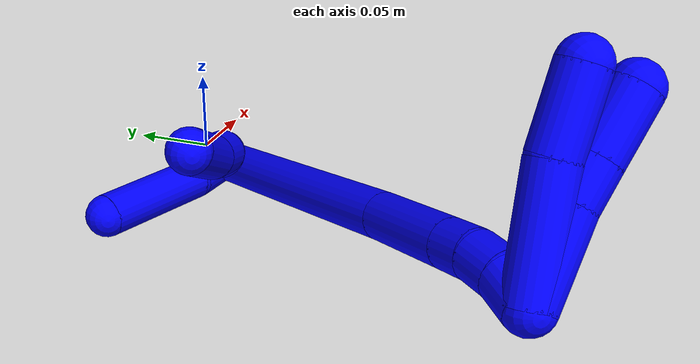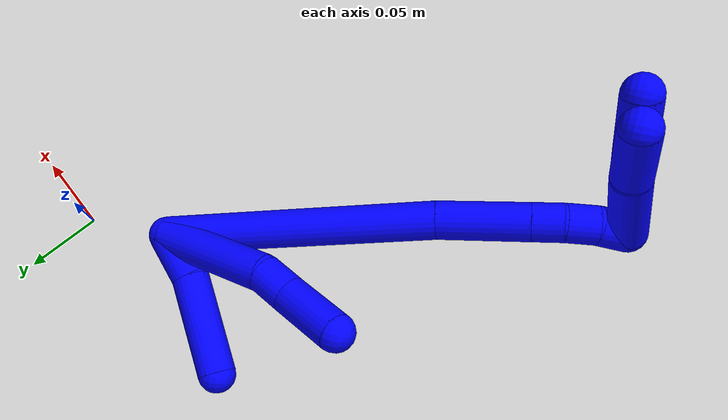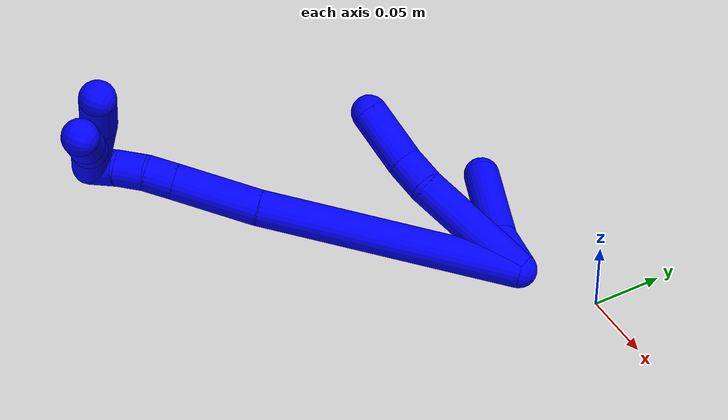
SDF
<sdf version="1.7">
 <world name="default">
  <model name="photoneo_s_sensor">
   <static>1</static>
   <pose>0 0 2 1.57079 1.57079 3.14159</pose>
   <link name="link">
    <inertial><mass>0.1</mass></inertial>
    <sensor name="sensor" type="depth">
     <update_rate>30</update_rate>
     <camera>
      <horizontal_fov>1.22</horizontal_fov>
      <image><width>1920</width><height>1200</height><format>B8G8R8</format></image>
      <clip><near>0.1</near><far>4</far></clip>
      <depth_camera><output>points</output></depth_camera>
     </camera>
     <plugin name="camera_plugin" filename="libgazebo_ros_depth_camera.so">
      <baseline>0.2</baseline>
      <alwaysOn>1</alwaysOn>
      <updateRate>0.0</updateRate>
      <cameraName>camera_ir</cameraName>
      <imageTopicName>/camera/color/image_raw</imageTopicName>
      <cameraInfoTopicName>/camera/color/camera_info</cameraInfoTopicName>
      <depthImageTopicName>/camera/depth/image_raw</depthImageTopicName>
      <depthImageCameraInfoTopicName>/camera/depth/camera_info</depthImageCameraInfoTopicName>
      <pointCloudTopicName>/camera/depth/points</pointCloudTopicName>
      <frameName>fr_optical</frameName>
      <pointCloudCutoff>0.1</pointCloudCutoff>
      <pointCloudCutoffMax>2.0</pointCloudCutoffMax>
      <distortionK1>0</distortionK1>
      <distortionK2>0</distortionK2>
      <distortionK3>0</distortionK3>
      <distortionT1>0</distortionT1>
      <distortionT2>0</distortionT2>
      <CxPrime>0</CxPrime>
      <Cx>0</Cx>
      <Cy>0</Cy>
      <focalLength>0</focalLength>
      <hackBaseline>0</hackBaseline>
     </plugin>
    </sensor>
   </link>
  </model>
  <model name="bin">
   <static>1</static>
   <link name="bottom">
    <collision name="collision-bottom">
     <pose>0 0 -0.01 0 -0 0</pose>
     <geometry><box><size>0.8 0.6 0.02</size></box></geometry>
     <surface>
      <friction><ode><mu>100</mu><mu2>100</mu2></ode></friction>
      <contact><collide_bitmask>65535</collide_bitmask></contact>
     </surface>
    </collision>
   </link>
   <link name="west_wall">
    <collision name="collision-west_wall">
     <pose>-0.41 0 0.1 0 -0 0</pose>
     <geometry><box><size>0.02 0.6 0.2</size></box></geometry>
     <surface>
      <friction><ode><mu>100</mu><mu2>100</mu2></ode></friction>
      <contact><collide_bitmask>65535</collide_bitmask></contact>
     </surface>
    </collision>
   </link>
   <link name="east_wall">
    <collision name="collision-east_wall">
     <pose>0.41 0 0.1 0 -0 0</pose>
     <geometry><box><size>0.02 0.6 0.2</size></box></geometry>
     <surface>
      <friction><ode><mu>100</mu><mu2>100</mu2></ode></friction>
      <contact><collide_bitmask>65535</collide_bitmask></contact>
     </surface>
    </collision>
   </link>
   <link name="south_wall">
    <collision name="collision-south_wall">
     <pose>0 -0.31 0.1 0 -0 0</pose>
     <geometry><box><size>0.8 0.02 0.2</size></box></geometry>
     <surface>
      <friction><ode><mu>100</mu><mu2>100</mu2></ode></friction>
      <contact><collide_bitmask>65535</collide_bitmask></contact>
     </surface>
    </collision>
   </link>
   <link name="north_wall">
    <collision name="collision-north_wall">
     <pose>0 0.31 0.1 0 -0 0</pose>
     <geometry><box><size>0.8 0.02 0.2</size></box></geometry>
     <surface>
      <friction><ode><mu>100</mu><mu2>100</mu2></ode></friction>
      <contact><collide_bitmask>65535</collide_bitmask></contact>
     </surface>
    </collision>
   </link>
  </model>
  <model name="1">
   <static>0</static>
   <link name="1">
    <collision name="collision-cylinder-e_1_2_8">
     <pose>0.012233 -0.006646 0.039754 0.165645 0.294667 0.024638</pose>
     <geometry><cylinder><radius>0.0125</radius><length>0.084243</length></cylinder></geometry>
     <surface>
      <friction><ode><mu>1.16</mu><mu2>1.16</mu2><slip1>0</slip1><slip2>0</slip2></ode></friction>
      <contact><ode><kp>1e+06</kp><kd>1</kd><max_vel>0</max_vel><min_depth>0.001</min_depth></ode></contact>
     </surface>
    </collision>
    <visual name="visual-cylinder-e_1_2_8">
     <pose>0.012233 -0.006646 0.039754 0.165645 0.294667 0.024638</pose>
     <geometry><cylinder><radius>0.0125</radius><length>0.084243</length></cylinder></geometry>
     <material><ambient>0 0 1 1</ambient></material>
    </visual>
    <collision name="collision-cylinder-e_2_8_9">
     <pose>0.029155 -0.011856 0.090014 -0.13588 0.416326 -0.028743</pose>
     <geometry><cylinder><radius>0.0125</radius><length>0.023188</length></cylinder></geometry>
     <surface>
      <friction><ode><mu>1.16</mu><mu2>1.16</mu2><slip1>0</slip1><slip2>0</slip2></ode></friction>
      <contact><ode><kp>1e+06</kp><kd>1</kd><max_vel>0</max_vel><min_depth>0.001</min_depth></ode></contact>
     </surface>
    </collision>
    <visual name="visual-cylinder-e_2_8_9">
     <pose>0.029155 -0.011856 0.090014 -0.13588 0.416326 -0.028743</pose>
     <geometry><cylinder><radius>0.0125</radius><length>0.023188</length></cylinder></geometry>
     <material><ambient>0 0 1 1</ambient></material>
    </visual>
    <collision name="collision-cylinder-e_3_9_6">
     <pose>0.044313 -0.011082 0.11904 0.035797 0.514273 0.009414</pose>
     <geometry><cylinder><radius>0.0125</radius><length>0.042569</length></cylinder></geometry>
     <surface>
      <friction><ode><mu>1.16</mu><mu2>1.16</mu2><slip1>0</slip1><slip2>0</slip2></ode></friction>
      <contact><ode><kp>1e+06</kp><kd>1</kd><max_vel>0</max_vel><min_depth>0.001</min_depth></ode></contact>
     </surface>
    </collision>
    <visual name="visual-cylinder-e_3_9_6">
     <pose>0.044313 -0.011082 0.11904 0.035797 0.514273 0.009414</pose>
     <geometry><cylinder><radius>0.0125</radius><length>0.042569</length></cylinder></geometry>
     <material><ambient>0 0 1 1</ambient></material>
    </visual>
    <collision name="collision-cylinder-e_1_2_10">
     <pose>0.007656 0.008479 0.011892 -0.619407 0.482804 -0.157246</pose>
     <geometry><cylinder><radius>0.0125</radius><length>0.03298</length></cylinder></geometry>
     <surface>
      <friction><ode><mu>1.16</mu><mu2>1.16</mu2><slip1>0</slip1><slip2>0</slip2></ode></friction>
      <contact><ode><kp>1e+06</kp><kd>1</kd><max_vel>0</max_vel><min_depth>0.001</min_depth></ode></contact>
     </surface>
    </collision>
    <visual name="visual-cylinder-e_1_2_10">
     <pose>0.007656 0.008479 0.011892 -0.619407 0.482804 -0.157246</pose>
     <geometry><cylinder><radius>0.0125</radius><length>0.03298</length></cylinder></geometry>
     <material><ambient>0 0 1 1</ambient></material>
    </visual>
    <collision name="collision-cylinder-e_2_10_5">
     <pose>0.035173 0.036541 0.042356 -0.811864 0.634411 -0.28035</pose>
     <geometry><cylinder><radius>0.0125</radius><length>0.06702</length></cylinder></geometry>
     <surface>
      <friction><ode><mu>1.16</mu><mu2>1.16</mu2><slip1>0</slip1><slip2>0</slip2></ode></friction>
      <contact><ode><kp>1e+06</kp><kd>1</kd><max_vel>0</max_vel><min_depth>0.001</min_depth></ode></contact>
     </surface>
    </collision>
    <visual name="visual-cylinder-e_2_10_5">
     <pose>0.035173 0.036541 0.042356 -0.811864 0.634411 -0.28035</pose>
     <geometry><cylinder><radius>0.0125</radius><length>0.06702</length></cylinder></geometry>
     <material><ambient>0 0 1 1</ambient></material>
    </visual>
    <collision name="collision-cylinder-e_1_2_11">
     <pose>-0.018968 -0.020342 0.085897 0.232536 -0.211658 -0.024812</pose>
     <geometry><cylinder><radius>0.0125</radius><length>0.180576</length></cylinder></geometry>
     <surface>
      <friction><ode><mu>1.16</mu><mu2>1.16</mu2><slip1>0</slip1><slip2>0</slip2></ode></friction>
      <contact><ode><kp>1e+06</kp><kd>1</kd><max_vel>0</max_vel><min_depth>0.001</min_depth></ode></contact>
     </surface>
    </collision>
    <visual name="visual-cylinder-e_1_2_11">
     <pose>-0.018968 -0.020342 0.085897 0.232536 -0.211658 -0.024812</pose>
     <geometry><cylinder><radius>0.0125</radius><length>0.180576</length></cylinder></geometry>
     <material><ambient>0 0 1 1</ambient></material>
    </visual>
    <collision name="collision-cylinder-e_2_11_12">
     <pose>-0.042045 -0.046139 0.200549 0.187469 -0.139482 -0.013134</pose>
     <geometry><cylinder><radius>0.0125</radius><length>0.059108</length></cylinder></geometry>
     <surface>
      <friction><ode><mu>1.16</mu><mu2>1.16</mu2><slip1>0</slip1><slip2>0</slip2></ode></friction>
      <contact><ode><kp>1e+06</kp><kd>1</kd><max_vel>0</max_vel><min_depth>0.001</min_depth></ode></contact>
     </surface>
    </collision>
    <visual name="visual-cylinder-e_2_11_12">
     <pose>-0.042045 -0.046139 0.200549 0.187469 -0.139482 -0.013134</pose>
     <geometry><cylinder><radius>0.0125</radius><length>0.059108</length></cylinder></geometry>
     <material><ambient>0 0 1 1</ambient></material>
    </visual>
    <collision name="collision-cylinder-e_3_12_13">
     <pose>-0.047646 -0.053384 0.23907 0.181302 -0.149162 -0.013584</pose>
     <geometry><cylinder><radius>0.0125</radius><length>0.020082</length></cylinder></geometry>
     <surface>
      <friction><ode><mu>1.16</mu><mu2>1.16</mu2><slip1>0</slip1><slip2>0</slip2></ode></friction>
      <contact><ode><kp>1e+06</kp><kd>1</kd><max_vel>0</max_vel><min_depth>0.001</min_depth></ode></contact>
     </surface>
    </collision>
    <visual name="visual-cylinder-e_3_12_13">
     <pose>-0.047646 -0.053384 0.23907 0.181302 -0.149162 -0.013584</pose>
     <geometry><cylinder><radius>0.0125</radius><length>0.020082</length></cylinder></geometry>
     <material><ambient>0 0 1 1</ambient></material>
    </visual>
    <collision name="collision-cylinder-e_4_13_14">
     <pose>-0.051714 -0.055405 0.258543 0.023714 -0.259354 -0.003093</pose>
     <geometry><cylinder><radius>0.0125</radius><length>0.02009</length></cylinder></geometry>
     <surface>
      <friction><ode><mu>1.16</mu><mu2>1.16</mu2><slip1>0</slip1><slip2>0</slip2></ode></friction>
      <contact><ode><kp>1e+06</kp><kd>1</kd><max_vel>0</max_vel><min_depth>0.001</min_depth></ode></contact>
     </surface>
    </collision>
    <visual name="visual-cylinder-e_4_13_14">
     <pose>-0.051714 -0.055405 0.258543 0.023714 -0.259354 -0.003093</pose>
     <geometry><cylinder><radius>0.0125</radius><length>0.02009</length></cylinder></geometry>
     <material><ambient>0 0 1 1</ambient></material>
    </visual>
    <collision name="collision-cylinder-e_5_14_1">
     <pose>-0.05737 -0.053778 0.277657 -0.19483 -0.310809 0.030618</pose>
     <geometry><cylinder><radius>0.0125</radius><length>0.020143</length></cylinder></geometry>
     <surface>
      <friction><ode><mu>1.16</mu><mu2>1.16</mu2><slip1>0</slip1><slip2>0</slip2></ode></friction>
      <contact><ode><kp>1e+06</kp><kd>1</kd><max_vel>0</max_vel><min_depth>0.001</min_depth></ode></contact>
     </surface>
    </collision>
    <visual name="visual-cylinder-e_5_14_1">
     <pose>-0.05737 -0.053778 0.277657 -0.19483 -0.310809 0.030618</pose>
     <geometry><cylinder><radius>0.0125</radius><length>0.020143</length></cylinder></geometry>
     <material><ambient>0 0 1 1</ambient></material>
    </visual>
    <collision name="collision-cylinder-e_1_1_15">
     <pose>-0.048085 -0.079067 0.282079 1.75247 0.421225 0.50242</pose>
     <geometry><cylinder><radius>0.0125</radius><length>0.060486</length></cylinder></geometry>
     <surface>
      <friction><ode><mu>1.16</mu><mu2>1.16</mu2><slip1>0</slip1><slip2>0</slip2></ode></friction>
      <contact><ode><kp>1e+06</kp><kd>1</kd><max_vel>0</max_vel><min_depth>0.001</min_depth></ode></contact>
     </surface>
    </collision>
    <visual name="visual-cylinder-e_1_1_15">
     <pose>-0.048085 -0.079067 0.282079 1.75247 0.421225 0.50242</pose>
     <geometry><cylinder><radius>0.0125</radius><length>0.060486</length></cylinder></geometry>
     <material><ambient>0 0 1 1</ambient></material>
    </visual>
    <collision name="collision-cylinder-e_2_15_4">
     <pose>-0.030097 -0.12503 0.274936 1.68485 0.288556 0.322926</pose>
     <geometry><cylinder><radius>0.0125</radius><length>0.039514</length></cylinder></geometry>
     <surface>
      <friction><ode><mu>1.16</mu><mu2>1.16</mu2><slip1>0</slip1><slip2>0</slip2></ode></friction>
      <contact><ode><kp>1e+06</kp><kd>1</kd><max_vel>0</max_vel><min_depth>0.001</min_depth></ode></contact>
     </surface>
    </collision>
    <visual name="visual-cylinder-e_2_15_4">
     <pose>-0.030097 -0.12503 0.274936 1.68485 0.288556 0.322926</pose>
     <geometry><cylinder><radius>0.0125</radius><length>0.039514</length></cylinder></geometry>
     <material><ambient>0 0 1 1</ambient></material>
    </visual>
    <collision name="collision-cylinder-e_1_1_16">
     <pose>-0.056981 -0.073527 0.282757 1.76762 0.156202 0.190237</pose>
     <geometry><cylinder><radius>0.0125</radius><length>0.044603</length></cylinder></geometry>
     <surface>
      <friction><ode><mu>1.16</mu><mu2>1.16</mu2><slip1>0</slip1><slip2>0</slip2></ode></friction>
      <contact><ode><kp>1e+06</kp><kd>1</kd><max_vel>0</max_vel><min_depth>0.001</min_depth></ode></contact>
     </surface>
    </collision>
    <visual name="visual-cylinder-e_1_1_16">
     <pose>-0.056981 -0.073527 0.282757 1.76762 0.156202 0.190237</pose>
     <geometry><cylinder><radius>0.0125</radius><length>0.044603</length></cylinder></geometry>
     <material><ambient>0 0 1 1</ambient></material>
    </visual>
    <collision name="collision-cylinder-e_2_16_17">
     <pose>-0.053197 -0.105645 0.276756 1.73043 0.029514 0.034645</pose>
     <geometry><cylinder><radius>0.0125</radius><length>0.021308</length></cylinder></geometry>
     <surface>
      <friction><ode><mu>1.16</mu><mu2>1.16</mu2><slip1>0</slip1><slip2>0</slip2></ode></friction>
      <contact><ode><kp>1e+06</kp><kd>1</kd><max_vel>0</max_vel><min_depth>0.001</min_depth></ode></contact>
     </surface>
    </collision>
    <visual name="visual-cylinder-e_2_16_17">
     <pose>-0.053197 -0.105645 0.276756 1.73043 0.029514 0.034645</pose>
     <geometry><cylinder><radius>0.0125</radius><length>0.021308</length></cylinder></geometry>
     <material><ambient>0 0 1 1</ambient></material>
    </visual>
    <collision name="collision-cylinder-e_3_17_3">
     <pose>-0.05245 -0.133009 0.272534 1.71982 0.025424 0.029525</pose>
     <geometry><cylinder><radius>0.0125</radius><length>0.034089</length></cylinder></geometry>
     <surface>
      <friction><ode><mu>1.16</mu><mu2>1.16</mu2><slip1>0</slip1><slip2>0</slip2></ode></friction>
      <contact><ode><kp>1e+06</kp><kd>1</kd><max_vel>0</max_vel><min_depth>0.001</min_depth></ode></contact>
     </surface>
    </collision>
    <visual name="visual-cylinder-e_3_17_3">
     <pose>-0.05245 -0.133009 0.272534 1.71982 0.025424 0.029525</pose>
     <geometry><cylinder><radius>0.0125</radius><length>0.034089</length></cylinder></geometry>
     <material><ambient>0 0 1 1</ambient></material>
    </visual>
    <collision name="collision-sphere-3">
     <pose>-0.052016 -0.149859 0.270004 0 -0 0</pose>
     <geometry><sphere><radius>0.0125</radius></sphere></geometry>
     <surface>
      <friction><ode><mu>1.16</mu><mu2>1.16</mu2><slip1>0</slip1><slip2>0</slip2></ode></friction>
      <contact><ode><kp>1e+06</kp><kd>1</kd><max_vel>0</max_vel><min_depth>0.001</min_depth></ode></contact>
     </surface>
    </collision>
    <visual name="visual-sphere-3">
     <pose>-0.052016 -0.149859 0.270004 0 -0 0</pose>
     <geometry><sphere><radius>0.0125</radius></sphere></geometry>
     <material><ambient>0 0 1 1</ambient></material>
    </visual>
    <collision name="collision-sphere-17">
     <pose>-0.052883 -0.116159 0.275063 0 -0 0</pose>
     <geometry><sphere><radius>0.0125</radius></sphere></geometry>
     <surface>
      <friction><ode><mu>1.16</mu><mu2>1.16</mu2><slip1>0</slip1><slip2>0</slip2></ode></friction>
      <contact><ode><kp>1e+06</kp><kd>1</kd><max_vel>0</max_vel><min_depth>0.001</min_depth></ode></contact>
     </surface>
    </collision>
    <visual name="visual-sphere-17">
     <pose>-0.052883 -0.116159 0.275063 0 -0 0</pose>
     <geometry><sphere><radius>0.0125</radius></sphere></geometry>
     <material><ambient>0 0 1 1</ambient></material>
    </visual>
    <collision name="collision-sphere-16">
     <pose>-0.053512 -0.095131 0.278449 0 -0 0</pose>
     <geometry><sphere><radius>0.0125</radius></sphere></geometry>
     <surface>
      <friction><ode><mu>1.16</mu><mu2>1.16</mu2><slip1>0</slip1><slip2>0</slip2></ode></friction>
      <contact><ode><kp>1e+06</kp><kd>1</kd><max_vel>0</max_vel><min_depth>0.001</min_depth></ode></contact>
     </surface>
    </collision>
    <visual name="visual-sphere-16">
     <pose>-0.053512 -0.095131 0.278449 0 -0 0</pose>
     <geometry><sphere><radius>0.0125</radius></sphere></geometry>
     <material><ambient>0 0 1 1</ambient></material>
    </visual>
    <collision name="collision-sphere-4">
     <pose>-0.024475 -0.143847 0.272781 0 -0 0</pose>
     <geometry><sphere><radius>0.0125</radius></sphere></geometry>
     <surface>
      <friction><ode><mu>1.16</mu><mu2>1.16</mu2><slip1>0</slip1><slip2>0</slip2></ode></friction>
      <contact><ode><kp>1e+06</kp><kd>1</kd><max_vel>0</max_vel><min_depth>0.001</min_depth></ode></contact>
     </surface>
    </collision>
    <visual name="visual-sphere-4">
     <pose>-0.024475 -0.143847 0.272781 0 -0 0</pose>
     <geometry><sphere><radius>0.0125</radius></sphere></geometry>
     <material><ambient>0 0 1 1</ambient></material>
    </visual>
    <collision name="collision-sphere-15">
     <pose>-0.035719 -0.106213 0.277092 0 -0 0</pose>
     <geometry><sphere><radius>0.0125</radius></sphere></geometry>
     <surface>
      <friction><ode><mu>1.16</mu><mu2>1.16</mu2><slip1>0</slip1><slip2>0</slip2></ode></friction>
      <contact><ode><kp>1e+06</kp><kd>1</kd><max_vel>0</max_vel><min_depth>0.001</min_depth></ode></contact>
     </surface>
    </collision>
    <visual name="visual-sphere-15">
     <pose>-0.035719 -0.106213 0.277092 0 -0 0</pose>
     <geometry><sphere><radius>0.0125</radius></sphere></geometry>
     <material><ambient>0 0 1 1</ambient></material>
    </visual>
    <collision name="collision-sphere-1">
     <pose>-0.060451 -0.051922 0.287065 0 -0 0</pose>
     <geometry><sphere><radius>0.0125</radius></sphere></geometry>
     <surface>
      <friction><ode><mu>1.16</mu><mu2>1.16</mu2><slip1>0</slip1><slip2>0</slip2></ode></friction>
      <contact><ode><kp>1e+06</kp><kd>1</kd><max_vel>0</max_vel><min_depth>0.001</min_depth></ode></contact>
     </surface>
    </collision>
    <visual name="visual-sphere-1">
     <pose>-0.060451 -0.051922 0.287065 0 -0 0</pose>
     <geometry><sphere><radius>0.0125</radius></sphere></geometry>
     <material><ambient>0 0 1 1</ambient></material>
    </visual>
    <collision name="collision-sphere-14">
     <pose>-0.05429 -0.055635 0.26825 0 -0 0</pose>
     <geometry><sphere><radius>0.0125</radius></sphere></geometry>
     <surface>
      <friction><ode><mu>1.16</mu><mu2>1.16</mu2><slip1>0</slip1><slip2>0</slip2></ode></friction>
      <contact><ode><kp>1e+06</kp><kd>1</kd><max_vel>0</max_vel><min_depth>0.001</min_depth></ode></contact>
     </surface>
    </collision>
    <visual name="visual-sphere-14">
     <pose>-0.05429 -0.055635 0.26825 0 -0 0</pose>
     <geometry><sphere><radius>0.0125</radius></sphere></geometry>
     <material><ambient>0 0 1 1</ambient></material>
    </visual>
    <collision name="collision-sphere-13">
     <pose>-0.049138 -0.055174 0.248837 0 -0 0</pose>
     <geometry><sphere><radius>0.0125</radius></sphere></geometry>
     <surface>
      <friction><ode><mu>1.16</mu><mu2>1.16</mu2><slip1>0</slip1><slip2>0</slip2></ode></friction>
      <contact><ode><kp>1e+06</kp><kd>1</kd><max_vel>0</max_vel><min_depth>0.001</min_depth></ode></contact>
     </surface>
    </collision>
    <visual name="visual-sphere-13">
     <pose>-0.049138 -0.055174 0.248837 0 -0 0</pose>
     <geometry><sphere><radius>0.0125</radius></sphere></geometry>
     <material><ambient>0 0 1 1</ambient></material>
    </visual>
    <collision name="collision-sphere-12">
     <pose>-0.046153 -0.051594 0.229303 0 -0 0</pose>
     <geometry><sphere><radius>0.0125</radius></sphere></geometry>
     <surface>
      <friction><ode><mu>1.16</mu><mu2>1.16</mu2><slip1>0</slip1><slip2>0</slip2></ode></friction>
      <contact><ode><kp>1e+06</kp><kd>1</kd><max_vel>0</max_vel><min_depth>0.001</min_depth></ode></contact>
     </surface>
    </collision>
    <visual name="visual-sphere-12">
     <pose>-0.046153 -0.051594 0.229303 0 -0 0</pose>
     <geometry><sphere><radius>0.0125</radius></sphere></geometry>
     <material><ambient>0 0 1 1</ambient></material>
    </visual>
    <collision name="collision-sphere-11">
     <pose>-0.037936 -0.040684 0.171795 0 -0 0</pose>
     <geometry><sphere><radius>0.0125</radius></sphere></geometry>
     <surface>
      <friction><ode><mu>1.16</mu><mu2>1.16</mu2><slip1>0</slip1><slip2>0</slip2></ode></friction>
      <contact><ode><kp>1e+06</kp><kd>1</kd><max_vel>0</max_vel><min_depth>0.001</min_depth></ode></contact>
     </surface>
    </collision>
    <visual name="visual-sphere-11">
     <pose>-0.037936 -0.040684 0.171795 0 -0 0</pose>
     <geometry><sphere><radius>0.0125</radius></sphere></geometry>
     <material><ambient>0 0 1 1</ambient></material>
    </visual>
    <collision name="collision-sphere-8">
     <pose>0.024466 -0.013292 0.079508 0 -0 0</pose>
     <geometry><sphere><radius>0.0125</radius></sphere></geometry>
     <surface>
      <friction><ode><mu>1.16</mu><mu2>1.16</mu2><slip1>0</slip1><slip2>0</slip2></ode></friction>
      <contact><ode><kp>1e+06</kp><kd>1</kd><max_vel>0</max_vel><min_depth>0.001</min_depth></ode></contact>
     </surface>
    </collision>
    <visual name="visual-sphere-8">
     <pose>0.024466 -0.013292 0.079508 0 -0 0</pose>
     <geometry><sphere><radius>0.0125</radius></sphere></geometry>
     <material><ambient>0 0 1 1</ambient></material>
    </visual>
    <collision name="collision-sphere-2">
     <geometry><sphere><radius>0.0125</radius></sphere></geometry>
     <surface>
      <friction><ode><mu>1.16</mu><mu2>1.16</mu2><slip1>0</slip1><slip2>0</slip2></ode></friction>
      <contact><ode><kp>1e+06</kp><kd>1</kd><max_vel>0</max_vel><min_depth>0.001</min_depth></ode></contact>
     </surface>
    </collision>
    <visual name="visual-sphere-2">
     <geometry><sphere><radius>0.0125</radius></sphere></geometry>
     <material><ambient>0 0 1 1</ambient></material>
    </visual>
    <collision name="collision-sphere-9">
     <pose>0.033843 -0.010419 0.10052 0 -0 0</pose>
     <geometry><sphere><radius>0.0125</radius></sphere></geometry>
     <surface>
      <friction><ode><mu>1.16</mu><mu2>1.16</mu2><slip1>0</slip1><slip2>0</slip2></ode></friction>
      <contact><ode><kp>1e+06</kp><kd>1</kd><max_vel>0</max_vel><min_depth>0.001</min_depth></ode></contact>
     </surface>
    </collision>
    <visual name="visual-sphere-9">
     <pose>0.033843 -0.010419 0.10052 0 -0 0</pose>
     <geometry><sphere><radius>0.0125</radius></sphere></geometry>
     <material><ambient>0 0 1 1</ambient></material>
    </visual>
    <collision name="collision-sphere-6">
     <pose>0.054783 -0.011746 0.137559 0 -0 0</pose>
     <geometry><sphere><radius>0.0125</radius></sphere></geometry>
     <surface>
      <friction><ode><mu>1.16</mu><mu2>1.16</mu2><slip1>0</slip1><slip2>0</slip2></ode></friction>
      <contact><ode><kp>1e+06</kp><kd>1</kd><max_vel>0</max_vel><min_depth>0.001</min_depth></ode></contact>
     </surface>
    </collision>
    <visual name="visual-sphere-6">
     <pose>0.054783 -0.011746 0.137559 0 -0 0</pose>
     <geometry><sphere><radius>0.0125</radius></sphere></geometry>
     <material><ambient>0 0 1 1</ambient></material>
    </visual>
    <collision name="collision-sphere-10">
     <pose>0.015311 0.016958 0.023783 0 -0 0</pose>
     <geometry><sphere><radius>0.0125</radius></sphere></geometry>
     <surface>
      <friction><ode><mu>1.16</mu><mu2>1.16</mu2><slip1>0</slip1><slip2>0</slip2></ode></friction>
      <contact><ode><kp>1e+06</kp><kd>1</kd><max_vel>0</max_vel><min_depth>0.001</min_depth></ode></contact>
     </surface>
    </collision>
    <visual name="visual-sphere-10">
     <pose>0.015311 0.016958 0.023783 0 -0 0</pose>
     <geometry><sphere><radius>0.0125</radius></sphere></geometry>
     <material><ambient>0 0 1 1</ambient></material>
    </visual>
    <collision name="collision-sphere-5">
     <pose>0.055034 0.056124 0.060929 0 -0 0</pose>
     <geometry><sphere><radius>0.0125</radius></sphere></geometry>
     <surface>
      <friction><ode><mu>1.16</mu><mu2>1.16</mu2><slip1>0</slip1><slip2>0</slip2></ode></friction>
      <contact><ode><kp>1e+06</kp><kd>1</kd><max_vel>0</max_vel><min_depth>0.001</min_depth></ode></contact>
     </surface>
    </collision>
    <visual name="visual-sphere-5">
     <pose>0.055034 0.056124 0.060929 0 -0 0</pose>
     <geometry><sphere><radius>0.0125</radius></sphere></geometry>
     <material><ambient>0 0 1 1</ambient></material>
    </visual>
    <inertial>
     <pose>-0.01656 -0.037379 0.149884 0 -0 0</pose>
     <mass>0.75</mass>
     <inertia>
      <ixx>0.000635</ixx>
      <ixy>0</ixy>
      <ixz>0</ixz>
      <iyy>0.000574</iyy>
      <iyz>0</iyz>
      <izz>0.000239</izz>
     </inertia>
    </inertial>
   </link>
   <pose>-0.042941 -0.034523 0.012499 -1.36801 -0.659152 2.05088</pose>
  </model>
 </world>
</sdf>
